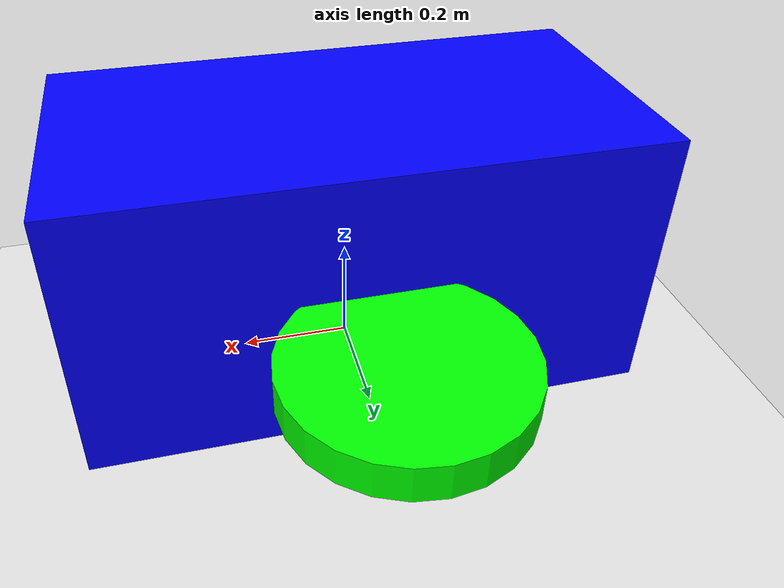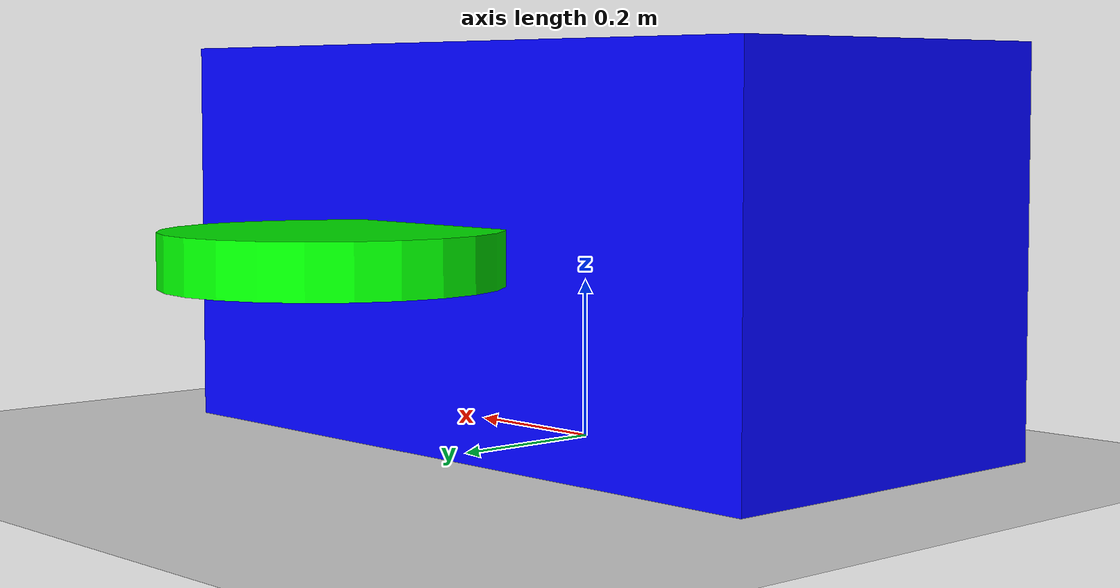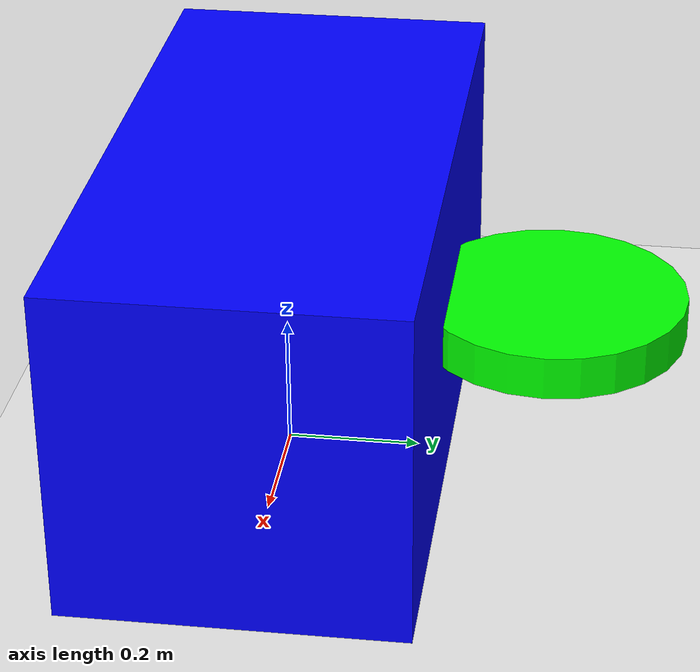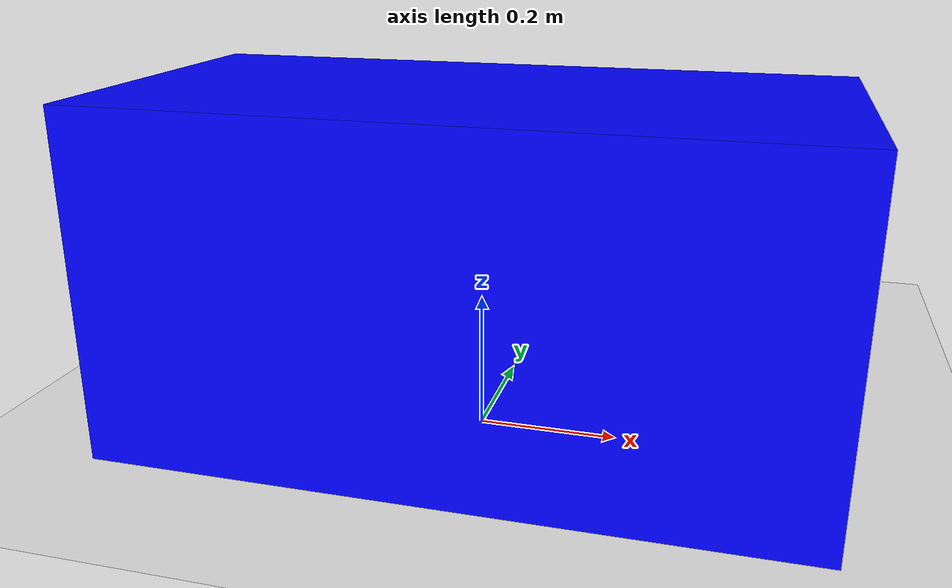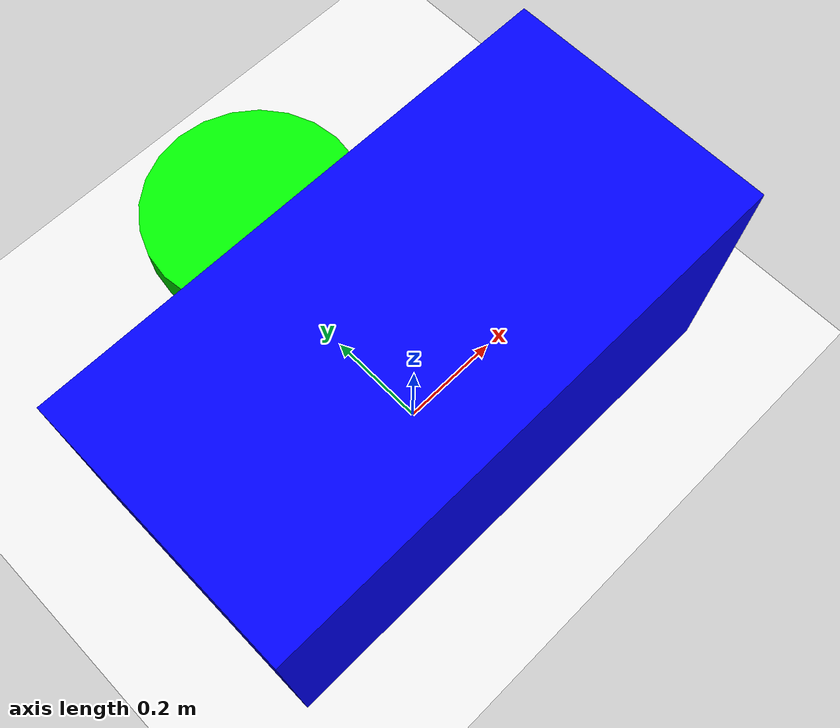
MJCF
<mujoco><worldbody><light diffuse=".5 .5 .5" pos="0 0 3" dir="0 0 -1" /><geom name="ground" type="plane" size="5 5 0.1" rgba=".9 .9 .9 1" /><body name="body"><freejoint name="root" /><geom name="torso" type="box" size="0.5 0.25 0.25" pos="0 0 0.25" rgba="0 0 1 1" mass="0.1" /><body name="wing0" pos="0 0.4 0.25" euler="0 0 90"><joint name="wing0link" type="hinge" axis="0 0 1" range="-55 55" /><geom name="wing0" type="cylinder" size="0.2 0.0325" pos="0 0 0" rgba="0 1 0 1" mass="1" /></body><body name="wing1" pos="0 0.4 0.25" euler="0 0 90"><joint name="wing1link" type="hinge" axis="0 0 1" range="-66 66" /><geom name="wing1" type="cylinder" size="0.2 0.0325" pos="0 0 0" rgba="0 1 0 1" mass="1" /></body></body></worldbody><actuator><motor name="wing0m" joint="wing0link" gear="26" ctrllimited="true" ctrlrange="-5 5" /><motor name="wing1m" joint="wing1link" gear="79" ctrllimited="true" ctrlrange="-5 5" /></actuator></mujoco>
